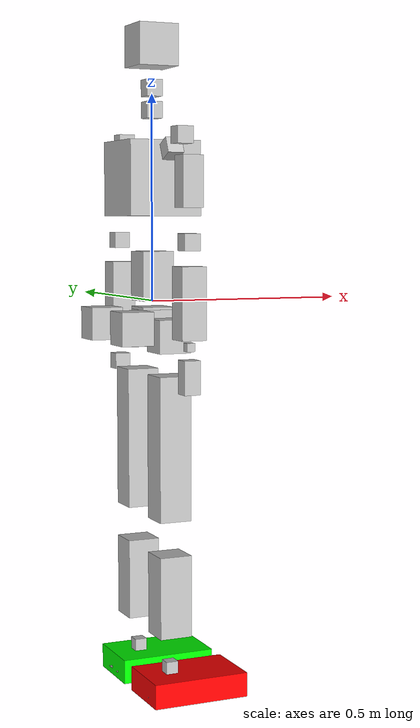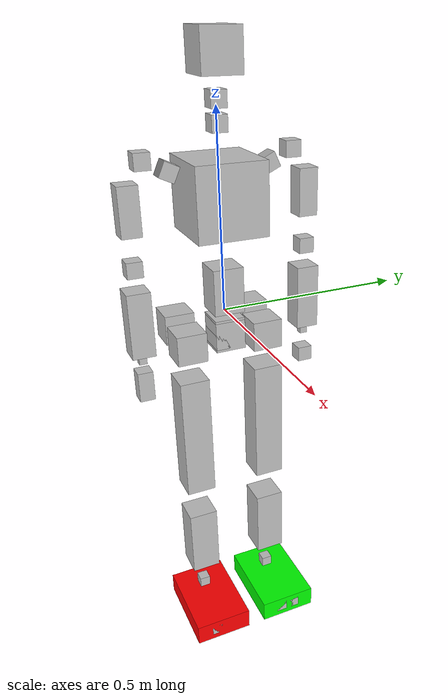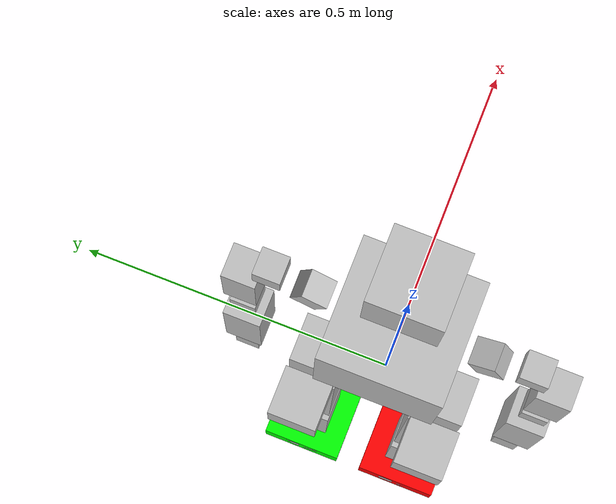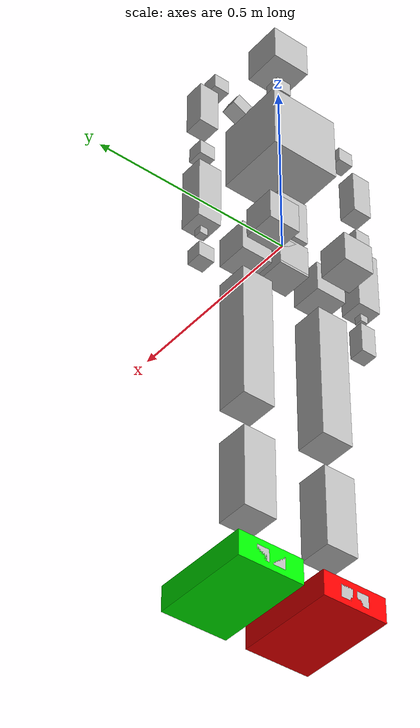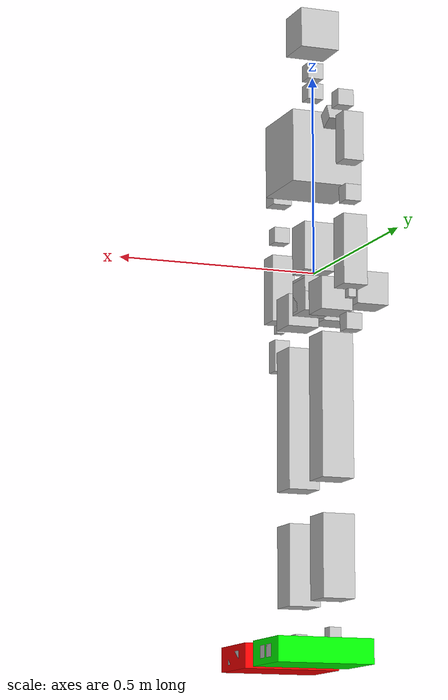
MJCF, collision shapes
<mujoco model="GR1T1">
  <default>
    <motor ctrlrange="-1 1" ctrllimited="true"/>
    <default class="body">
      <geom type="box" condim="1" friction="1.0 0.05 0.05" solimp=".9 .99 .003" solref=".015 1"/>
      <joint type="hinge" armature=".007" limited="true" solimplimit="0 .99 .01"/>
      <site size="10" group="3"/>
    </default>
  </default>
  <asset>
    <texture type="skybox" builtin="gradient" rgb1=".3 .5 .7" rgb2="0 0 0" width="32" height="512"/>
    <texture name="body" type="cube" builtin="flat" mark="cross" width="128" height="128" rgb1="0.8 0.6 0.4" rgb2="0.8 0.6 0.4" markrgb="1 1 1" random="0.01"/>
    <material name="body" texture="body" texuniform="true" rgba="0.8 0.6 .4 1"/>
    <texture name="grid" type="2d" builtin="checker" width="512" height="512" rgb1=".1 .2 .3" rgb2=".2 .3 .4"/>
    <material name="grid" texture="grid" texrepeat="1 1" texuniform="true" reflectance="0.02"/>
    <mesh name="base" file="./meshes/base.STL"/>
    <mesh name="l_thigh_roll" file="./meshes/l_thigh_roll.STL"/>
    <mesh name="l_thigh_yaw" file="./meshes/l_thigh_yaw.STL"/>
    <mesh name="l_thigh_pitch" file="./meshes/l_thigh_pitch.STL"/>
    <mesh name="l_shank_pitch" file="./meshes/l_shank_pitch.STL"/>
    <mesh name="l_foot_pitch" file="./meshes/l_foot_pitch.STL"/>
    <mesh name="l_foot_roll" file="./meshes/l_foot_roll.STL"/>
    <mesh name="r_thigh_roll" file="./meshes/r_thigh_roll.STL"/>
    <mesh name="r_thigh_yaw" file="./meshes/r_thigh_yaw.STL"/>
    <mesh name="r_thigh_pitch" file="./meshes/r_thigh_pitch.STL"/>
    <mesh name="r_shank_pitch" file="./meshes/r_shank_pitch.STL"/>
    <mesh name="r_foot_pitch" file="./meshes/r_foot_pitch.STL"/>
    <mesh name="r_foot_roll" file="./meshes/r_foot_roll.STL"/>
    <mesh name="waist_yaw" file="./meshes/waist_yaw.STL"/>
    <mesh name="waist_pitch" file="./meshes/waist_pitch.STL"/>
    <mesh name="waist_roll" file="./meshes/waist_roll.STL"/>
    <mesh name="head_yaw" file="./meshes/head_yaw.STL"/>
    <mesh name="head_roll" file="./meshes/head_roll.STL"/>
    <mesh name="head_pitch" file="./meshes/head_pitch.STL"/>
    <mesh name="l_upper_arm_pitch" file="./meshes/l_upper_arm_pitch.STL"/>
    <mesh name="l_upper_arm_roll" file="./meshes/l_upper_arm_roll.STL"/>
    <mesh name="l_upper_arm_yaw" file="./meshes/l_upper_arm_yaw.STL"/>
    <mesh name="l_lower_arm_pitch" file="./meshes/l_lower_arm_pitch.STL"/>
    <mesh name="l_hand_yaw" file="./meshes/l_hand_yaw.STL"/>
    <mesh name="l_hand_roll" file="./meshes/l_hand_roll.STL"/>
    <mesh name="l_hand_pitch" file="./meshes/l_hand_pitch.STL"/>
    <mesh name="r_upper_arm_pitch" file="./meshes/r_upper_arm_pitch.STL"/>
    <mesh name="r_upper_arm_roll" file="./meshes/r_upper_arm_roll.STL"/>
    <mesh name="r_upper_arm_yaw" file="./meshes/r_upper_arm_yaw.STL"/>
    <mesh name="r_lower_arm_pitch" file="./meshes/r_lower_arm_pitch.STL"/>
    <mesh name="r_hand_yaw" file="./meshes/r_hand_yaw.STL"/>
    <mesh name="r_hand_roll" file="./meshes/r_hand_roll.STL"/>
    <mesh name="r_hand_pitch" file="./meshes/r_hand_pitch.STL"/>
  </asset>
  <worldbody>
    <body name="base">
      <inertial pos="-0.0508888 0.000109183 -0.0455794" quat="0.706855 0.707166 0.0123661 -0.0109307" mass="6.45117" diaginertia="0.0149302 0.0127972 0.00640923"/>
      <geom type="mesh" contype="0" conaffinity="0" group="1" density="0" rgba="0.752941 0.752941 0.752941 1" mesh="base"/>
      <geom size="0.04 0.04 0.04" pos="0 0 -0.06" type="box" rgba="0.752941 0.752941 0.752941 1"/>
      <joint armature="0" limited="false" name="root" pos="0 0 0" type="free"/>
      <body name="torso_link">
        <body name="base_com" />
      </body>

      <body name="l_thigh_roll" pos="-0.047999 0.105 -0.057493">
        <inertial pos="0.04163 3.4568e-05 -0.0021382" quat="0.575529 0.581908 -0.40597 0.406619" mass="1.1437" diaginertia="0.00117548 0.00100413 0.000943892"/>
        <joint name="l_hip_roll" pos="0 0 0" axis="1 0 1.221e-05" range="-0.09 0.79"/>
        <geom type="mesh" contype="0" conaffinity="0" group="1" density="0" rgba="0.75294 0.75294 0.75294 1" mesh="l_thigh_roll"/>
        <geom size="0.04 0.04 0.04" pos="-0.046 0 0" type="box" rgba="0.75294 0.75294 0.75294 1"/>
        <body name="l_thigh_yaw" pos="0.048 0 -0.030499">
          <inertial pos="0.00018348 0.046462 -0.10389" quat="0.704251 -0.0226446 -0.0453749 0.708138" mass="3.9888" diaginertia="0.0163385 0.0100158 0.00924336"/>
          <joint name="l_hip_yaw" pos="0 0 0" axis="1.2209e-05 6.8349e-05 1" range="-0.7 0.7"/>
          <geom type="mesh" contype="0" conaffinity="0" group="1" density="0" rgba="0.75294 0.75294 0.75294 1" mesh="l_thigh_yaw"/>
          <geom size="0.04 0.04 0.04" pos="0 0 0.01" type="box" rgba="0.75294 0.75294 0.75294 1"/>
          <body name="l_thigh_pitch" pos="0 0 -0.11">
            <inertial pos="0.0028493 -0.021688 -0.090886" quat="0.707411 -0.0125435 -0.0111264 0.706604" mass="6.369" diaginertia="0.0532352 0.0425096 0.0134363"/>
            <joint name="l_hip_pitch" pos="0 0 0" axis="0 1 -6.8349e-05" range="-1.75 0.7"/>
            <geom type="mesh" contype="0" conaffinity="0" group="1" density="0" rgba="0.75294 0.75294 0.75294 1" mesh="l_thigh_pitch"/>
            <geom size="0.04 0.04 0.175" pos="0 0 -0.15" type="box" rgba="0.75294 0.75294 0.75294 1"/>
            <body name="l_shank_pitch" pos="0 2.4606e-05 -0.36">
              <inertial pos="0.0024312 -2.9945e-05 -0.11554" quat="0.692137 0.00134576 0.00140217 0.721764" mass="2.1895" diaginertia="0.0162703 0.016117 0.00113627"/>
              <joint name="l_knee_pitch" pos="0 0 0" axis="0 1 6.8349e-05" range="-0.09 1.92"/>
              <geom type="mesh" contype="0" conaffinity="0" group="1" density="0" rgba="0.75294 0.75294 0.75294 1" mesh="l_shank_pitch"/>
              <geom size="0.04 0.04 0.1" pos="0 0 -0.15" type="box" rgba="0.75294 0.75294 0.75294 1"/>
              <body name="l_foot_pitch" pos="0 2.3239e-05 -0.34">
                <inertial pos="1.748e-11 4.3804e-11 0" quat="1 3.42295e-05 -6.07362e-06 -2.07897e-10" mass="0.080335" diaginertia="5.1022e-06 4.3976e-06 4.188e-06"/>
                <joint name="l_ankle_pitch" pos="0 0 0" axis="0 1 6.8349e-05" range="-1.05 0.52"/>
                <geom type="mesh" contype="0" conaffinity="0" group="1" density="0" rgba="0.75294 0.75294 0.75294 1" mesh="l_foot_pitch"/>
                <geom size="0.015 0.015 0.015" pos="0 0 0.01" type="box" rgba="0.75294 0.75294 0.75294 1"/>
                <body name="l_foot_roll">
                  <inertial pos="0.039446 0.00035757 -0.038101" quat="-0.00087198 0.709539 -0.00177594 0.704664" mass="0.584" diaginertia="0.00271032 0.0024027 0.000369145"/>
                  <joint name="l_ankle_roll" pos="0 0 0" axis="1 0 1.221e-05" range="-0.44 0.44"/>
                  <geom type="mesh" contype="0" conaffinity="0" group="1" density="0" rgba="0.75294 0.75294 0.75294 1" mesh="l_foot_roll"/>
                  <geom name="l_foot_1" size="0.015 0.015 0.12" pos="0.05 0.02 -0.035" quat="0.707105 0 0.707108 0" type="box" rgba="0.75294 0.75294 0.75294 1"/>
                  <geom name="l_foot_2" size="0.015 0.015 0.12" pos="0.05 -0.02 -0.035" quat="0.707105 0 0.707108 0" type="box" rgba="0.75294 0.75294 0.75294 1"/>
                  <geom name="geom_left_A1_col" size="0.03 .08 0.12" pos="0.05 0 -0.035" quat="0.707105 0 0.707108 0" type="box" rgba="0 1 0 1"/>
                  <body name="left_foot" pos="0 0 -0.076" quat="1 0 0 0"/>
                </body>
              </body>
            </body>
          </body>
        </body>
      </body>
      <body name="r_thigh_roll" pos="-0.047999 -0.105 -0.057508">
        <inertial pos="0.0416295 3.45678e-05 -0.00213824" quat="0.57555 0.581927 -0.405942 0.406589" mass="1.14367" diaginertia="0.00117548 0.00100417 0.000943891"/>
        <joint name="r_hip_roll" pos="0 0 0" axis="1 0 1.221e-05" range="-0.79 0.09"/>
        <geom type="mesh" contype="0" conaffinity="0" group="1" density="0" rgba="0.752941 0.752941 0.752941 1" mesh="r_thigh_roll"/>
        <geom size="0.04 0.04 0.04" pos="-0.046 0 0" type="box" rgba="0.752941 0.752941 0.752941 1"/>
        <body name="r_thigh_yaw" pos="0.048 0 -0.030499">
          <inertial pos="-0.00159762 -0.0464482 -0.103899" quat="0.709186 -0.0420808 -0.0194028 0.703497" mass="3.98882" diaginertia="0.0163388 0.0100142 0.00924469"/>
          <joint name="r_hip_yaw" pos="0 0 0" axis="1.2209e-05 6.8349e-05 1" range="-0.7 0.7"/>
          <geom type="mesh" contype="0" conaffinity="0" group="1" density="0" rgba="0.752941 0.752941 0.752941 1" mesh="r_thigh_yaw"/>
          <geom size="0.04 0.04 0.04" pos="0 0 0.01" type="box" rgba="0.752941 0.752941 0.752941 1"/>
          <body name="r_thigh_pitch" pos="0 0 -0.11">
            <inertial pos="0.002842 0.0217009 -0.0919987" quat="0.706586 -0.0113774 -0.0126258 0.707423" mass="6.36895" diaginertia="0.0532349 0.0424818 0.0134641"/>
            <joint name="r_hip_pitch" pos="0 0 0" axis="0 1 6.8349e-05" range="-1.75 0.7"/>
            <geom type="mesh" contype="0" conaffinity="0" group="1" density="0" rgba="0.752941 0.752941 0.752941 1" mesh="r_thigh_pitch"/>
            <geom size="0.04 0.04 0.175" pos="0 0 -0.15" type="box" rgba="0.752941 0.752941 0.752941 1"/>
            <body name="r_shank_pitch" pos="0 2.4606e-05 -0.36">
              <inertial pos="0.00236658 4.56188e-05 -0.115532" quat="0.71872 0.00154106 0.00120241 0.695296" mass="2.18947" diaginertia="0.0162708 0.0161183 0.00113536"/>
              <joint name="r_knee_pitch" pos="0 0 0" axis="0 1 -6.8349e-05" range="-0.09 1.92"/>
              <geom type="mesh" contype="0" conaffinity="0" group="1" density="0" rgba="0.752941 0.752941 0.752941 1" mesh="r_shank_pitch"/>
              <geom size="0.04 0.04 0.1" pos="0 0 -0.15" type="box" rgba="0.752941 0.752941 0.752941 1"/>
              <body name="r_foot_pitch" pos="0 2.3239e-05 -0.34">
                <inertial pos="1.75705e-11 4.40342e-11 0" quat="1 3.42336e-05 -6.07409e-06 -2.07938e-10" mass="0.0799219" diaginertia="5.11122e-06 4.40004e-06 4.17954e-06"/>
                <joint name="r_ankle_pitch" pos="0 0 0" axis="0 1 6.8349e-05" range="-1.05 0.52"/>
                <geom type="mesh" contype="0" conaffinity="0" group="1" density="0" rgba="0.752941 0.752941 0.752941 1" mesh="r_foot_pitch"/>
                <geom size="0.015 0.015 0.015" pos="0 0 0.01" type="box" rgba="0.752941 0.752941 0.752941 1"/>
                <body name="r_foot_roll">
                  <inertial pos="0.043909 -0.00032475 -0.039419" quat="0.000727105 0.710094 0.00155959 0.704104" mass="0.58089" diaginertia="0.00280098 0.0024886 0.000368482"/>
                  <joint name="r_ankle_roll" pos="0 0 0" axis="1 0 1.221e-05" range="-0.44 0.44"/>
                  <geom type="mesh" contype="0" conaffinity="0" group="1" density="0" rgba="0.75294 0.75294 0.75294 1" mesh="r_foot_roll"/>
                  <geom name="r_foot_1" size="0.015 0.015 0.12" pos="0.05 0.02 -0.035" quat="0.707105 0 0.707108 0" type="box" rgba="0.75294 0.75294 0.75294 1"/>
                  <geom name="r_foot_2" size="0.015 0.015 0.12" pos="0.05 -0.02 -0.035" quat="0.707105 0 0.707108 0" type="box" rgba="0.75294 0.75294 0.75294 1"/>

                  <geom name="geom_right_A1_col" size="0.03 .08 0.12" pos="0.05 0 -0.035" quat="0.707105 0 0.707108 0" type="box" rgba="1 0 0 1"/>
                  <body name="right_foot" pos="0 0 -0.076" quat="1 0 0 0"/>

                </body>
              </body>
            </body>
          </body>
        </body>
      </body>
      <body name="waist_yaw" pos="0 0 0.0065">
        <inertial pos="-0.010388 -0.00169636 0.0224709" quat="8.03475e-05 0.752953 -6.91813e-06 0.658075" mass="0.37886" diaginertia="0.000387148 0.000354992 0.000193448"/>
        <geom type="mesh" contype="0" conaffinity="0" group="1" density="0" rgba="0.752941 0.752941 0.752941 1" mesh="waist_yaw"/>
        <geom size="0.04 0.04 0.04" pos="0 0 -0.06" quat="0.707388 0.706825 0 0" type="box" rgba="0.752941 0.752941 0.752941 1"/>
        <body name="waist_pitch" pos="0 0 0.055">
          <inertial pos="0.00229173 -0.00229364 0.0425378" quat="0.998452 -0.0194486 0.0162447 0.0495079" mass="4.40328" diaginertia="0.00487449 0.00487146 0.00355351"/>
          <geom type="mesh" contype="0" conaffinity="0" group="1" density="0" rgba="0.752941 0.752941 0.752941 1" mesh="waist_pitch"/>
          <geom size="0.04 0.04 0.06" type="box" rgba="0.752941 0.752941 0.752941 1"/>
          <body name="waist_roll" pos="0 0 0.085">
            <inertial pos="-0.00982804 -1.2954e-05 0.160653" quat="0.999997 1.84368e-05 -0.00260593 -4.00255e-05" mass="7.34393" diaginertia="0.0305266 0.0217567 0.0136783"/>
            <geom type="mesh" contype="0" conaffinity="0" group="1" density="0" rgba="0.752941 0.752941 0.752941 1" mesh="waist_roll"/>
            <geom size="0.09 0.09 0.09" pos="0 0 0.15" type="box" rgba="0.752941 0.752941 0.752941 1"/>
            <body name="head_yaw" pos="0 -2.3548e-05 0.34453">
              <inertial pos="0.000255273 -1.43143e-05 0.0571737" quat="0.698659 0.111628 0.112302 0.697713" mass="0.168425" diaginertia="0.00013241 0.000126266 6.86988e-05"/>
              <joint name="head_yaw" pos="0 0 0" axis="-1.221e-05 -6.8349e-05 1" range="-2.71 2.71"/>
              <geom type="mesh" contype="0" conaffinity="0" group="1" density="0" rgba="0.752941 0.752941 0.752941 1" mesh="head_yaw"/>
              <geom size="0.02 0.02 0.02" pos="0 0 -0.03" type="box" rgba="0.752941 0.752941 0.752941 1"/>
              <body name="head_roll" pos="0 0 0.1225">
                <inertial pos="-0.000539717 0.00299723 -0.00194711" quat="0.498775 0.509039 0.50481 0.487104" mass="0.0189574" diaginertia="5.66154e-06 3.71917e-06 3.07146e-06"/>
                <joint name="head_roll" pos="0 0 0" axis="1 0 1.221e-05" range="-0.35 0.35"/>
                <geom type="mesh" contype="0" conaffinity="0" group="1" density="0" rgba="0.752941 0.752941 0.752941 1" mesh="head_roll"/>
                <geom size="0.02 0.02 0.02" pos="0 0 -0.1" type="box" rgba="0.752941 0.752941 0.752941 1"/>
                <body name="head_pitch">
                  <inertial pos="0.0179937 0.000157203 -0.0107884" quat="-0.00317787 0.890883 0.0047882 0.454197" mass="0.315067" diaginertia="0.00129389 0.00105273 0.000852366"/>
                  <joint name="head_pitch" pos="0 0 0" axis="0 1 6.8349e-05" range="-0.52 0.35"/>
                  <geom type="mesh" contype="0" conaffinity="0" group="1" density="0" rgba="0.752941 0.752941 0.752941 1" mesh="head_pitch"/>
                  <geom size="0.05 0.05 0.05" type="box" rgba="0.752941 0.752941 0.752941 1"/>
                </body>
              </body>
            </body>
            <body name="l_upper_arm_pitch" pos="0 0.12661 0.21727" quat="0.976289 0.216473 0 0">
              <inertial pos="0.00515733 0.0588337 0.000122944" quat="0.999793 0.0203364 -0.000117253 0.0011083" mass="0.777394" diaginertia="0.000546411 0.000340581 0.000319359"/>
              <joint name="l_shoulder_pitch" pos="0 0 0" axis="0 1 0" range="-2.79 1.92"/>
              <geom type="mesh" contype="0" conaffinity="0" group="1" density="0" rgba="0.752941 0.752941 0.752941 1" mesh="l_upper_arm_pitch"/>
              <geom size="0.02 0.02 0.02" type="box" rgba="0.752941 0.752941 0.752941 1"/>
              <body name="l_upper_arm_roll" pos="0 0.067 0" quat="0.976289 -0.216473 0 0">
                <inertial pos="0.0260055 0.0238305 -0.0272078" quat="0.906707 0.298574 0.228734 -0.190834" mass="0.084111" diaginertia="9.66711e-05 8.99184e-05 2.54726e-05"/>
                <joint name="l_shoulder_roll" pos="0 0 0" axis="1 0 -1.221e-05" range="-0.57 3.27"/>
                <geom type="mesh" contype="0" conaffinity="0" group="1" density="0" rgba="0.752941 0.752941 0.752941 1" mesh="l_upper_arm_roll"/>
                <geom size="0.02 0.02 0.02" type="box" rgba="0.752941 0.752941 0.752941 1"/>
                <body name="l_upper_arm_yaw" pos="0 0.040004 -0.057502">
                  <inertial pos="-4.12427e-05 0.00135031 -0.101007" quat="0.706543 0.0248514 -0.0268343 0.706724" mass="0.78993" diaginertia="0.000480863 0.000420363 0.000315608"/>
                  <joint name="l_shoulder_yaw" pos="0 0 0" axis="1.221e-05 6.8349e-05 1" range="-2.97 2.97"/>
                  <geom type="mesh" contype="0" conaffinity="0" group="1" density="0" rgba="0.752941 0.752941 0.752941 1" mesh="l_upper_arm_yaw"/>
                  <geom size="0.025 0.025 0.06" pos="0 0 -0.05" type="box" rgba="0.752941 0.752941 0.752941 1"/>
                  <body name="l_lower_arm_pitch" pos="0 1.28869e-05 -0.188546">
                    <inertial pos="2.60519e-07 0.0196937 -0.0210902" quat="0.675254 -0.209845 0.209837 0.675252" mass="0.0553958" diaginertia="2.92256e-05 2.63267e-05 1.3293e-05"/>
                    <joint name="l_elbow_pitch" pos="0 0 0" axis="0 1 6.83491e-05" range="-2.27 2.27"/>
                    <geom type="mesh" contype="0" conaffinity="0" group="1" density="0" rgba="0.752941 0.752941 0.752941 1" mesh="l_lower_arm_pitch"/>
                    <geom size="0.02 0.02 0.02" type="box" rgba="0.752941 0.752941 0.752941 1"/>
                    <body name="l_hand_yaw" pos="0 0 -0.0405043">
                      <inertial pos="-4.20996e-05 0.000336116 -0.0559829" quat="0.999784 -0.0189715 -0.00676208 0.00509819" mass="0.606076" diaginertia="0.000747266 0.000709257 0.000280769"/>
                      <joint name="l_wrist_yaw" pos="0 0 0" axis="1.221e-05 6.83491e-05 1" range="-2.97 2.97"/>
                      <geom type="mesh" contype="0" conaffinity="0" group="1" density="0" rgba="0.752941 0.752941 0.752941 1" mesh="l_hand_yaw"/>
                      <geom size="0.03 0.03 0.085" pos="0 0 -0.1" type="box" rgba="0.752941 0.752941 0.752941 1"/>
                      <body name="l_hand_roll" pos="0 1.3775e-05 -0.20155">
                        <inertial pos="-1.5483e-08 -0.00044846 -1.9394e-08" quat="0 0.7071 0 0.707114" mass="0.0054473" diaginertia="3.6036e-07 3.5527e-07 7.344e-08"/>
                        <joint name="l_wrist_roll" pos="0 0 0" axis="1 0 -1.2211e-05" range="-0.61 0.61"/>
                        <geom type="mesh" contype="0" conaffinity="0" group="1" density="0" rgba="0.75294 0.75294 0.75294 1" mesh="l_hand_roll"/>
                        <geom size="0.01 0.01 0.01" type="box" rgba="0.75294 0.75294 0.75294 1"/>
                        <body name="l_hand_pitch">
                          <inertial pos="0.0071289 -0.0026192 -0.078567" quat="0.298548 0.646339 0.631172 0.307795" mass="0.5239" diaginertia="0.000345825 0.000211684 0.000195941"/>
                          <joint name="l_wrist_pitch" pos="0 0 0" axis="0 1 6.8349e-05" range="-0.61 0.61"/>
                          <geom size="0.02 0.02 0.02" pos="0 0 -0.07" type="box" rgba="0.75294 0.75294 0.75294 1"/>
                          <body name="left_eef" pos="0 0 0" quat="0.707107 0 0 0.707107">
                            <body name="left_mount" quat="0 0 1 0"/>
                            <body name="left_hand" pos="0 0 0"/>
                          </body>
                        </body>
                      </body>
                    </body>
                  </body>
                </body>
              </body>
            </body>
            <body name="r_upper_arm_pitch" pos="0 -0.12664 0.21725" quat="0.976303 -0.216409 0 0">
              <inertial pos="0.00515735 -0.0587916 0.000122944" quat="0.999675 -0.0254775 -0.000125407 -0.000494276" mass="0.777391" diaginertia="0.00054641 0.000340601 0.00031934"/>
              <joint name="r_shoulder_pitch" pos="0 0 0" axis="0 1 0" range="-2.79 1.92"/>
              <geom type="mesh" contype="0" conaffinity="0" group="1" density="0" rgba="0.752941 0.752941 0.752941 1" mesh="r_upper_arm_pitch"/>
              <geom size="0.02 0.02 0.02" type="box" rgba="0.752941 0.752941 0.752941 1"/>
              <body name="r_upper_arm_roll" pos="0 -0.067 0" quat="0.976303 0.216409 0 0">
                <inertial pos="0.0260059 -0.0238264 -0.0272109" quat="0.906733 -0.298529 0.228698 0.190821" mass="0.0840989" diaginertia="9.66585e-05 8.99068e-05 2.54689e-05"/>
                <joint name="r_shoulder_roll" pos="0 0 0" axis="1 0 -1.221e-05" range="-3.27 0.57"/>
                <geom type="mesh" contype="0" conaffinity="0" group="1" density="0" rgba="0.752941 0.752941 0.752941 1" mesh="r_upper_arm_roll"/>
                <geom size="0.02 0.02 0.02" type="box" rgba="0.752941 0.752941 0.752941 1"/>
                <body name="r_upper_arm_yaw" pos="0 -0.039996 -0.057473">
                  <inertial pos="0.00017083 -0.00124148 -0.100981" quat="0.712176 -0.02561 0.0250075 0.701088" mass="0.78993" diaginertia="0.000481112 0.000420147 0.000315576"/>
                  <joint name="r_shoulder_yaw" pos="0 0 0" axis="1.221e-05 6.8349e-05 1" range="-2.97 2.97"/>
                  <geom type="mesh" contype="0" conaffinity="0" group="1" density="0" rgba="0.752941 0.752941 0.752941 1" mesh="r_upper_arm_yaw"/>
                  <geom size="0.025 0.025 0.06" pos="0 0 -0.05" type="box" rgba="0.752941 0.752941 0.752941 1"/>
                  <body name="r_lower_arm_pitch" pos="0 1.28859e-05 -0.18853">
                    <inertial pos="2.54538e-07 -0.0196908 -0.0210929" quat="0.675237 0.209883 -0.209892 0.67524" mass="0.0553958" diaginertia="2.92256e-05 2.63267e-05 1.3293e-05"/>
                    <joint name="r_elbow_pitch" pos="0 0 0" axis="0 1 -6.835e-05" range="-2.27 2.27"/>
                    <geom type="mesh" contype="0" conaffinity="0" group="1" density="0" rgba="0.752941 0.752941 0.752941 1" mesh="r_lower_arm_pitch"/>
                    <geom size="0.02 0.02 0.02" type="box" rgba="0.752941 0.752941 0.752941 1"/>
                    <body name="r_hand_yaw" pos="0 0 -0.0405">
                      <inertial pos="0.000158044 -0.000478822 -0.0559415" quat="0.999772 0.019131 0.00724385 -0.00608553" mass="0.606076" diaginertia="0.000748132 0.000708413 0.000280748"/>
                      <joint name="r_wrist_yaw" pos="0 0 0" axis="1.221e-05 6.835e-05 1" range="-2.97 2.97"/>
                      <geom type="mesh" contype="0" conaffinity="0" group="1" density="0" rgba="0.752941 0.752941 0.752941 1" mesh="r_hand_yaw"/>
                      <geom size="0.03 0.03 0.085" pos="0 0 -0.1" type="box" rgba="0.752941 0.752941 0.752941 1"/>
                      <body name="r_hand_roll" pos="0 1.3775e-05 -0.20153">
                        <inertial pos="1.5545e-08 0.00044846 4.1938e-08" quat="0 0.707105 0 0.707108" mass="0.0054473" diaginertia="3.6036e-07 3.5527e-07 7.344e-08"/>
                        <joint name="r_wrist_roll" pos="0 0 0" axis="1 0 1.221e-05" range="-0.61 0.61"/>
                        <geom type="mesh" contype="0" conaffinity="0" group="1" density="0" rgba="0.75294 0.75294 0.75294 1" mesh="r_hand_roll"/>
                        <geom size="0.01 0.01 0.01" type="box" rgba="0.75294 0.75294 0.75294 1"/>
                        <body name="r_hand_pitch">
                          <inertial pos="0.0060733 0.0018907 -0.084578" quat="0.647336 -0.27161 -0.257721 0.6639" mass="0.53221" diaginertia="0.000319947 0.000196296 0.000182477"/>
                          <joint name="r_wrist_pitch" pos="0 0 0" axis="0 1 -6.835e-05" range="-0.61 0.61"/>
                          <geom size="0.02 0.02 0.04" pos="0 0 -0.07" type="box" rgba="0.75294 0.75294 0.75294 1"/>
                          <body name="right_eef" pos="0 0 0" quat="-0.707107 0 0 0.707107">
                            <body name="right_mount" quat="0 0 1 0"/>
                            <body name="right_hand" pos="0 0 0"/>
                          </body>
                        </body>
                      </body>
                    </body>
                  </body>
                </body>
              </body>
            </body>
          </body>
        </body>
      </body>
    </body>
  </worldbody>
  <actuator>
    <motor ctrllimited="true" ctrlrange="-20000 20000" joint="l_hip_roll" name="l_hip_roll"/>
    <motor ctrllimited="true" ctrlrange="-20000 20000" joint="l_hip_yaw" name="l_hip_yaw"/>
    <motor ctrllimited="true" ctrlrange="-20000 20000" joint="l_hip_pitch" name="l_hip_pitch"/>
    <motor ctrllimited="true" ctrlrange="-20000 20000" joint="l_knee_pitch" name="l_knee_pitch"/>
    <motor ctrllimited="true" ctrlrange="-20000 20000" joint="l_ankle_pitch" name="l_ankle_pitch"/>
    <motor ctrllimited="true" ctrlrange="-20000 20000" joint="l_ankle_roll" name="l_ankle_roll"/>

    <motor ctrllimited="true" ctrlrange="-20000 20000" joint="r_hip_roll" name="r_hip_roll"/>
    <motor ctrllimited="true" ctrlrange="-20000 20000" joint="r_hip_yaw" name="r_hip_yaw"/>
    <motor ctrllimited="true" ctrlrange="-20000 20000" joint="r_hip_pitch" name="r_hip_pitch"/>
    <motor ctrllimited="true" ctrlrange="-20000 20000" joint="r_knee_pitch" name="r_knee_pitch"/>
    <motor ctrllimited="true" ctrlrange="-20000 20000" joint="r_ankle_pitch" name="r_ankle_pitch"/>
    <motor ctrllimited="true" ctrlrange="-20000 20000" joint="r_ankle_roll" name="r_ankle_roll"/>

    <motor ctrllimited="true" ctrlrange="-20000 20000" joint="head_yaw" name="head_yaw"/>
    <motor ctrllimited="true" ctrlrange="-20000 20000" joint="head_pitch" name="head_pitch"/>
    <motor ctrllimited="true" ctrlrange="-20000 20000" joint="head_roll" name="head_roll"/>

    <motor ctrllimited="true" ctrlrange="-20000 20000" joint="l_shoulder_pitch" name="l_shoulder_pitch"/>
    <motor ctrllimited="true" ctrlrange="-20000 20000" joint="l_shoulder_roll" name="l_shoulder_roll"/>
    <motor ctrllimited="true" ctrlrange="-20000 20000" joint="l_shoulder_yaw" name="l_shoulder_yaw"/>
    <motor ctrllimited="true" ctrlrange="-20000 20000" joint="l_elbow_pitch" name="l_elbow_pitch"/>
    <motor ctrllimited="true" ctrlrange="-20000 20000" joint="l_wrist_yaw" name="l_wrist_yaw"/>
    <motor ctrllimited="true" ctrlrange="-20000 20000" joint="l_wrist_roll" name="l_wrist_roll"/>
    <motor ctrllimited="true" ctrlrange="-20000 20000" joint="l_wrist_pitch" name="l_wrist_pitch"/>

    <motor ctrllimited="true" ctrlrange="-20000 20000" joint="r_shoulder_pitch" name="r_shoulder_pitch"/>
    <motor ctrllimited="true" ctrlrange="-20000 20000" joint="r_shoulder_roll" name="r_shoulder_roll"/>
    <motor ctrllimited="true" ctrlrange="-20000 20000" joint="r_shoulder_yaw" name="r_shoulder_yaw"/>
    <motor ctrllimited="true" ctrlrange="-20000 20000" joint="r_elbow_pitch" name="r_elbow_pitch"/>
    <motor ctrllimited="true" ctrlrange="-20000 20000" joint="r_wrist_yaw" name="r_wrist_yaw"/>
    <motor ctrllimited="true" ctrlrange="-20000 20000" joint="r_wrist_roll" name="r_wrist_roll"/>
    <motor ctrllimited="true" ctrlrange="-20000 20000" joint="r_wrist_pitch" name="r_wrist_pitch"/>
  </actuator>
</mujoco>
